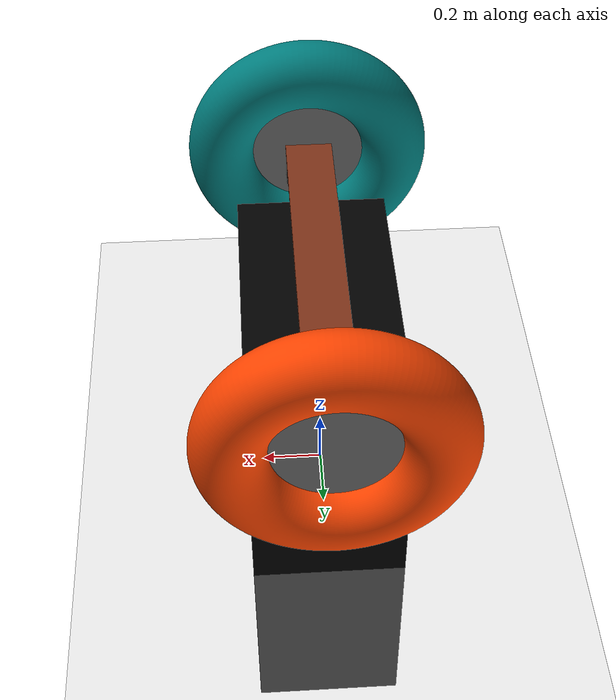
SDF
<?xml version="1.0" ?>
    <sdf version="1.8">
        <world name="beep_world">
            <physics name="1ms" type="ignored">
                <max_step_size>0.001</max_step_size>
                <real_time_factor>1.0</real_time_factor>
            </physics>
            <plugin
                filename="libignition-gazebo-physics-system.so"
                name="ignition::gazebo::systems::Physics">
            </plugin>
            <plugin
                filename="libignition-gazebo-user-commands-system.so"
                name="ignition::gazebo::systems::UserCommands">
            </plugin>
            <plugin
                filename="libignition-gazebo-scene-broadcaster-system.so"
                name="ignition::gazebo::systems::SceneBroadcaster">
            </plugin>
            <plugin filename="libignition-gazebo-imu-system.so"
                    name="ignition::gazebo::systems::Imu">
            </plugin>

            <light type="directional" name="sun">
                <cast_shadows>true</cast_shadows>
                <pose>0 0 10 0 0 0</pose>
                <diffuse>0.8 0.8 0.8 1</diffuse>
                <specular>0.2 0.2 0.2 1</specular>
                <attenuation>
                    <range>1000</range>
                    <constant>0.9</constant>
                    <linear>0.01</linear>
                    <quadratic>0.001</quadratic>
                </attenuation>
                <direction>-0.5 0.1 -0.9</direction>
            </light>

            <model name="ground_plane">
                <static>true</static>
                <link name="link">
                    <collision name="collision">
                    <geometry>
                        <plane>
                        <normal>0 0 1</normal>
                        </plane>
                    </geometry>
                    </collision>
                    <visual name="visual">
                    <geometry>
                        <plane>
                        <normal>0 0 1</normal>
                        <size>100 100</size>
                        </plane>
                    </geometry>
                    <material>
                        <ambient>0.8 0.8 0.8 1</ambient>
                        <diffuse>0.8 0.8 0.8 1</diffuse>
                        <specular>0.8 0.8 0.8 1</specular>
                    </material>
                    </visual>
                </link>
            </model>

            <model name="stand">
                <pose>0 0 0 0 0 0</pose>
                <static>true</static>

                <link name="link">
                    <collision name="collision">
                        <geometry>
                            <box>
                            <size>.5 1 1.5</size> <!-- Width, depth, height in meters -->
                            </box>
                        </geometry>
                    </collision>

                    <visual name="visual">
                        <geometry>
                            <box>
                            <size>.5 1 1.5</size> <!-- Width, depth, height in meters -->
                            </box>
                        </geometry>
                    <material>
                        <ambient>0 0 0 0</ambient> <!-- Red color (RGBA) -->
                    </material>

                    </visual>
                </link>

            </model>

            <include>
                <pose>0 0 .3 0 0 0</pose>
                <uri>model://models/bethany.sdf</uri>
            </include>

        </world>
    </sdf>

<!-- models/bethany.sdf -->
<sdf version="1.8">
        <model name='bethany' canonical_link='chassis'>
            <link name='chassis'>
                <sensor name="imu_sensor" type="imu">
                    <always_on>1</always_on>
                    <update_rate>10</update_rate>
                    <visualize>true</visualize>
                    <topic>imu</topic>
                </sensor>
                <pose relative_to='__model__'>0 0 0.6 0 0 0</pose>
                <inertial>
                    <mass>28.01</mass>
                    <inertia>
                        <ixx>3.48652322917</ixx>
                        <ixy>0</ixy>
                        <ixz>0</ixz>
                        <iyy>0.0182778958333</iyy>
                        <iyz>0</iyz>
                        <izz>3.48506333333</izz>
                    </inertia>
                </inertial>
                <visual name='visual'>
                    <geometry>
                        <box>
                            <size>0.155575 1.2192 0.0127</size>
                        </box>
                    </geometry>
                    <material>
                        <ambient>0.2 0.1 0.05 1</ambient>
                        <diffuse>0.5 0.2 0.1 1</diffuse>
                        <specular>0.3 0.15 0.1 1</specular>
                    </material>
                </visual>
                <collision name='collision'>
                    <geometry>
                        <box>
                            <size>0.155575 1.2192 0.0127</size>
                        </box>
                    </geometry>
                </collision>
            </link>
            <link name='left_motor'>
                <pose relative_to="chassis">0 .58 -.06 0 0 0</pose>
                <inertial>
                    <mass>.485</mass>
                    <inertia>
                        <ixx>0.00065475</ixx>
                        <ixy>0</ixy>
                        <ixz>0</ixz>
                        <iyy>0.00065475</iyy>
                        <iyz>0</iyz>
                        <izz>0.00065475</izz>
                    </inertia>
                </inertial>
                <visual name='visual'>
                    <geometry>
                        <box>
                        <size>0.155575 0.053975 0.1016</size>
                        </box>
                    </geometry>
                    <material>
                        <ambient>0.0 0.0 0.0 1</ambient>
                        <diffuse>0.0 0.0 0.0 1</diffuse>
                        <specular>0.0 0.0 0.0 1</specular>
                    </material>
                </visual>
                <collision name='collision'>
                    <geometry>
                        <box>
                        <size>0.155575 0.053975 0.1016</size>
                        </box>
                    </geometry>
                </collision>
            </link>
            <link name='right_motor'>
                <pose relative_to="chassis">0 -.58 -.06 0 0 0</pose>
                <inertial>
                    <mass>.485</mass>
                    <inertia>
                        <ixx>0.00065475</ixx>
                        <ixy>0</ixy>
                        <ixz>0</ixz>
                        <iyy>0.00065475</iyy>
                        <iyz>0</iyz>
                        <izz>0.00065475</izz>
                    </inertia>
                </inertial>
                <visual name='visual'>
                    <geometry>
                        <box>
                        <size>0.155575 0.053975 0.1016</size>
                        </box>
                    </geometry>
                    <material>
                        <ambient>0.0 0.0 0.0 1</ambient>
                        <diffuse>0.0 0.0 0.0 1</diffuse>
                        <specular>0.0 0.0 0.0 1</specular>
                    </material>
                </visual>
                <collision name='collision'>
                    <geometry>
                        <box>
                        <size>0.155575 0.053975 0.1016</size>
                        </box>
                    </geometry>
                </collision>
            </link>
            <link name='left_wheel_hub'>
                <pose relative_to="left_motor">0 0.1 0 -1.5707 0 0</pose>
                <inertial>
                    <mass>1.2</mass>
                    <inertia>
                        <ixx>0.053548288</ixx>
                        <ixy>0</ixy>
                        <ixz>0</ixz>
                        <iyy>0.053548288</iyy>
                        <iyz>0</iyz>
                        <izz>0.099096576</izz>
                    </inertia>
                </inertial>
                <visual name='visual'>
                    <geometry>
                        <cylinder>
                            <radius>0.19</radius>
                            <length>0.03</length>
                        </cylinder>
                    </geometry>
                    <material>
                        <ambient>.4 .4 .4 1</ambient>
                        <diffuse>.4 .4 .4 1</diffuse>
                        <specular>.4 .4 .4 1</specular>
                    </material>
                </visual>
                <collision name='collision'>
                    <geometry>
                        <cylinder>
                            <radius>0.16</radius>
                            <length>0.03</length>
                        </cylinder>
                    </geometry>
                </collision>
            </link>
            <link name='left_wheel'>
                <pose relative_to="left_wheel_hub">0 0 0 0 0 0</pose>
                <visual name='visual'>
                    <geometry>
                        <mesh>
                            <uri>model://models/torus.stl</uri>
                            <scale>1 1 1</scale>
                        </mesh>
                    </geometry>
                    <material>
                        <ambient>1.0 0.27 0.0 1</ambient>
                        <diffuse>1.0 0.27 0.0 1</diffuse>
                    </material>
                </visual>
                <collision name='collision'>
                    <geometry>
                        <mesh>
                            <uri>model://models/torus.stl</uri>
                            <scale>1 1 1</scale>
                        </mesh>
                    </geometry>
                </collision>
            </link>
            <link name='right_wheel_hub'>
                <pose relative_to="right_motor">0 -0.1 0 -1.5707 0 0</pose> <!--angles are in radian-->
                <inertial>
                    <mass>1.2</mass>
                    <inertia>
                        <ixx>0.053548288</ixx>
                        <ixy>0</ixy>
                        <ixz>0</ixz>
                        <iyy>0.053548288</iyy>
                        <iyz>0</iyz>
                        <izz>0.099096576</izz>
                    </inertia>
                </inertial>
                <visual name='visual'>
                    <geometry>
                        <cylinder>
                            <radius>0.19</radius>
                            <length>0.03</length>
                        </cylinder>
                    </geometry>
                    <material>
                        <ambient>.4 .4 .4 1</ambient>
                        <diffuse>.4 .4 .4 1</diffuse>
                        <specular>.4 .4 .4 1</specular>
                    </material>
                </visual>
                <collision name='collision'>
                    <geometry>
                        <cylinder>
                            <radius>0.16</radius>
                            <length>0.03</length>
                        </cylinder>
                    </geometry>
                </collision>
            </link>
            <link name='right_wheel'>
                <pose relative_to="right_wheel_hub">0 0 0 0 0 0</pose>
                <visual name='visual'>
                    <geometry>
                        <mesh>
                            <uri>model://models/torus.stl</uri>
                            <scale>1 1 1</scale>
                        </mesh>
                    </geometry>
                    <material>
                        <ambient>0.0 0.5 0.5 1</ambient>
                        <diffuse>0.0 0.5 0.5 1</diffuse>
                    </material>
                </visual>
                <collision name='collision'>
                    <geometry>
                        <mesh>
                            <uri>model://models/torus.stl</uri>
                            <scale>1 1 1</scale>
                        </mesh>
                    </geometry>
                </collision>
            </link>

            <joint name='left_motor_joint' type='fixed'>
                <parent>chassis</parent>
                <child>left_motor</child>
            </joint>
            <joint name='right_motor_joint' type='fixed'>
                <parent>chassis</parent>
                <child>right_motor</child>
            </joint>
            <joint name='left_axel' type='revolute'>
                <pose relative_to='left_wheel_hub'/>
                <parent>left_motor</parent>
                <child>left_wheel_hub</child>
                <axis>
                    <xyz expressed_in='__model__'>0 1 0</xyz> <!--can be defined as any frame or even arbitrary frames-->
                    <dynamics>
                        <damping>0.0</damping>
                        <friction>0.05</friction>
                    </dynamics>
                </axis>
            </joint>
            <joint name='right_axel' type='revolute'>
                <pose relative_to='right_wheel_hub'/>
                <parent>right_motor</parent>
                <child>right_wheel_hub</child>
                <axis>
                    <xyz expressed_in='__model__'>0 -1 0</xyz>
                    <dynamics>
                        <damping>0.0</damping>
                        <friction>0.05</friction>
                    </dynamics>
                </axis>
            </joint>
            <joint name="left_hub" type='fixed'>
                <parent>left_wheel_hub</parent>
                <child>left_wheel</child>
            </joint>
            <joint name="right_hub" type='fixed'>
                <parent>right_wheel_hub</parent>
                <child>right_wheel</child>
            </joint>

            <plugin name="data_motor" filename="/root/gazebo_beep/build/libdata_motor_plugin.so">
                <topic>left_duty</topic>
                <joint_name>left_axel</joint_name>
            </plugin>

            <plugin name="data_motor" filename="/root/gazebo_beep/build/libdata_motor_plugin.so">
                <topic>right_duty</topic>
                <joint_name>right_axel</joint_name>
            </plugin>

        </model>
    </sdf>
